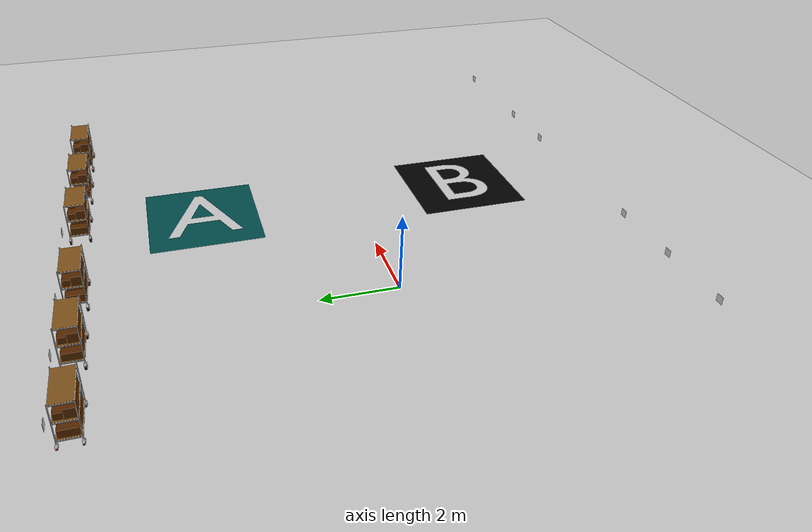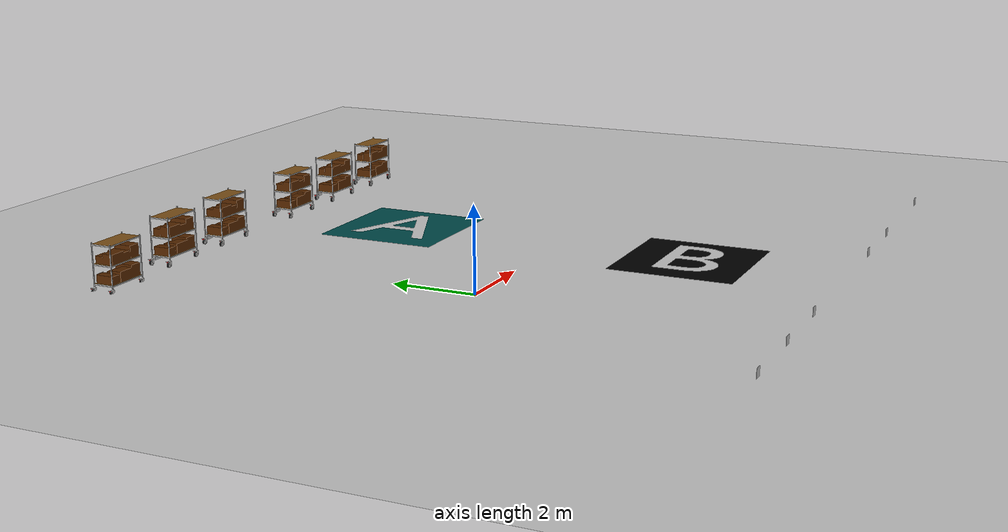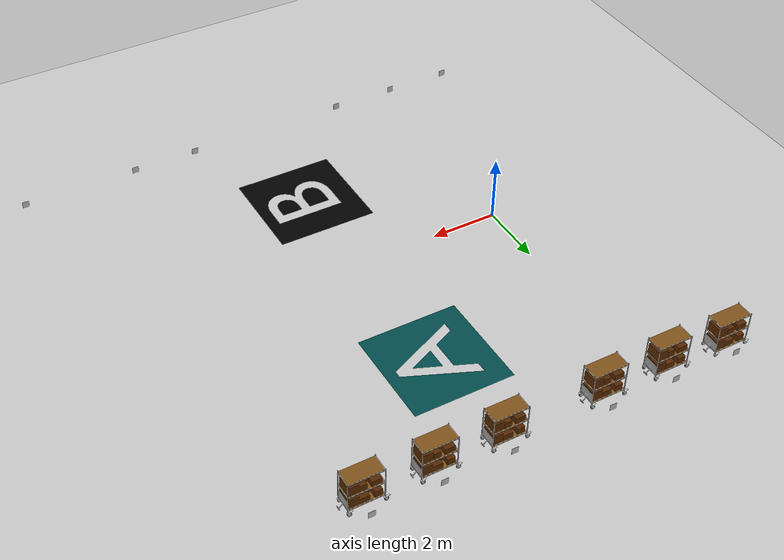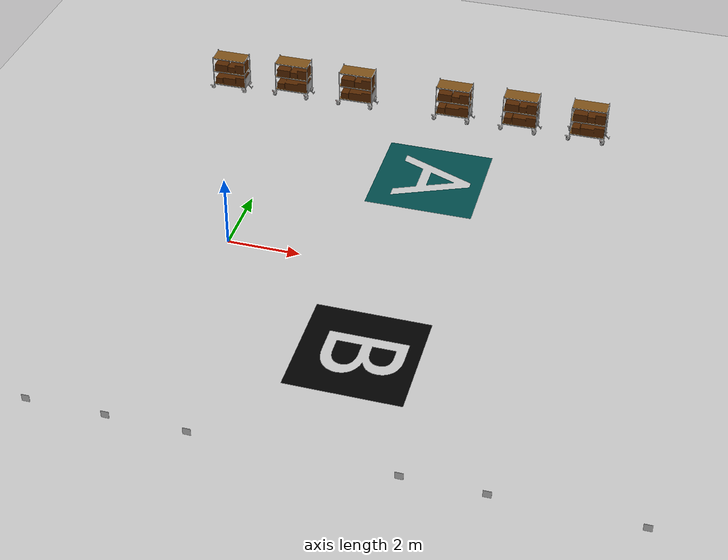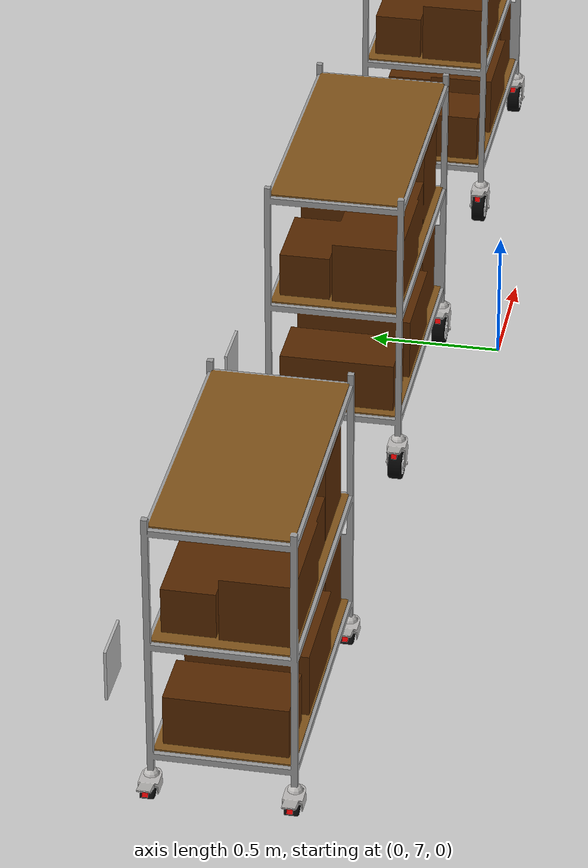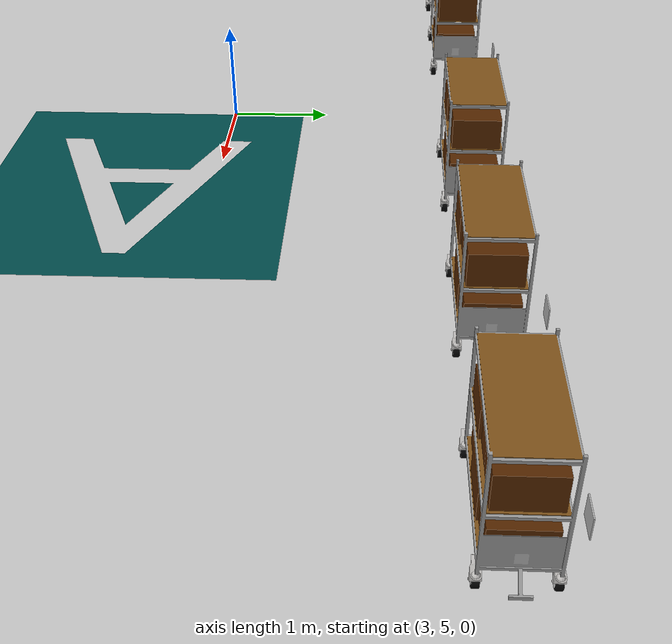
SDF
<sdf version="1.9">
 <world name="empty">
  <physics default="0" name="default_physics" type="ode">
   <max_step_size>0.01</max_step_size>
   <real_time_factor>1</real_time_factor>
   <real_time_update_rate>100</real_time_update_rate>
  </physics>
  <plugin name="gz::sim::systems::Physics" filename="gz-sim-physics-system"/>
  <plugin name="gz::sim::systems::UserCommands" filename="gz-sim-user-commands-system"/>
  <plugin name="gz::sim::systems::SceneBroadcaster" filename="gz-sim-scene-broadcaster-system"/>
  <plugin name="gz::sim::systems::Contact" filename="gz-sim-contact-system"/>
  <gravity>0 0 -9.8000000000000007</gravity>
  <magnetic_field>5.5644999999999998e-06 2.2875799999999999e-05 -4.2388400000000002e-05</magnetic_field>
  <atmosphere type="adiabatic"/>
  <scene>
   <ambient>0.400000006 0.400000006 0.400000006 1</ambient>
   <background>0.699999988 0.699999988 0.699999988 1</background>
   <shadows>true</shadows>
  </scene>
  <model name="ground_plane">
   <static>true</static>
   <link name="link">
    <collision name="collision">
     <geometry><plane><normal>0 0 1</normal><size>100 100</size></plane></geometry>
    </collision>
    <visual name="visual">
     <geometry><plane><normal>0 0 1</normal><size>100 100</size></plane></geometry>
     <material>
      <ambient>0.800000012 0.800000012 0.800000012 1</ambient>
      <diffuse>0.800000012 0.800000012 0.800000012 1</diffuse>
      <specular>0.800000012 0.800000012 0.800000012 1</specular>
     </material>
    </visual>
    <inertial>
     <mass>1</mass>
     <inertia><ixx>1</ixx><ixy>0</ixy><ixz>0</ixz><iyy>1</iyy><iyz>0</iyz><izz>1</izz></inertia>
    </inertial>
   </link>
  </model>
  <include>
   <uri>model://Apriltag36_11_00002</uri>
   <name>tag36_11_00001</name>
   <pose>-2.4924781322479248 7.9712347984313965 0.11262844502925873 0 -1.5708 1.5708</pose>
   <static>true</static>
  </include>
  <include>
   <uri>model://cart_model_2</uri>
   <name>cart_model2_0</name>
   <pose>-1.9974497197 7.47123479843 0.010166457292935922 0 0 0</pose>
   <static>true</static>
  </include>
  <include>
   <uri>model://Apriltag36_11_00003</uri>
   <name>tag36_11_00002</name>
   <pose>-0.49521669745445251 7.9712347984313965 0.11262844502925873 0 -1.5708 1.5708</pose>
   <static>true</static>
  </include>
  <include>
   <uri>model://cart_model_2</uri>
   <name>cart_model2_1</name>
   <pose>-0.0001882849 7.47123479843 0.15 0 0 0</pose>
   <static>true</static>
  </include>
  <include>
   <uri>model://Apriltag36_11_00004</uri>
   <name>tag36_11_00003</name>
   <pose>1.5189411105305899 7.9712347984313965 0.11262844502925873 0 -1.5708 1.5708</pose>
   <static>true</static>
  </include>
  <include>
   <uri>model://cart_model_2</uri>
   <name>cart_model2_2</name>
   <pose>2.01396952308 7.47123479843 0.15 0 0 0</pose>
   <static>true</static>
  </include>
  <include>
   <uri>model://Apriltag36_11_00005</uri>
   <name>tag36_11_00004</name>
   <pose>4.4940232445384698 7.9712347984313965 0.11262844502925873 0 -1.5708 1.5708</pose>
   <static>true</static>
  </include>
  <include>
   <uri>model://cart_model_2</uri>
   <name>cart_model2_3</name>
   <pose>4.98905165709 7.47123479843 0.15 0 0 0</pose>
   <static>true</static>
  </include>
  <include>
   <uri>model://Apriltag36_11_00006</uri>
   <name>tag36_11_00005</name>
   <pose>6.5056252111412327 7.9712347984313965 0.11262844502925873 0 -1.5708 1.5708</pose>
   <static>true</static>
  </include>
  <include>
   <uri>model://cart_model_2</uri>
   <name>cart_model2_4</name>
   <pose>7.00065362369 7.47123479843 0.15 0 0 0</pose>
   <static>true</static>
  </include>
  <include>
   <uri>model://Apriltag36_11_00007</uri>
   <name>tag36_11_00006</name>
   <pose>8.5118265151977539 7.9712347984313965 0.11262844502925873 0 -1.5708 1.5708</pose>
   <static>true</static>
  </include>
  <include>
   <uri>model://cart_model_2</uri>
   <name>cart_model2_5</name>
   <pose>9.00685492775 7.47123479843 0.15 0 0 0</pose>
   <static>true</static>
  </include>
  <include>
   <uri>model://Apriltag36_11_00003</uri>
   <name>tag36_11_00001_0</name>
   <pose>8.4743044491622062 -7.0236401557922363 0.11262844502925873 1.5708 -1.5708 -3.1416</pose>
   <static>true</static>
  </include>
  <include>
   <uri>model://Apriltag36_11_00004</uri>
   <name>tag36_11_00002_0</name>
   <pose>6.4928137260731162 -7.0236401557922363 0.11262844502925873 1.5708 -1.5708 -3.1416</pose>
   <static>true</static>
  </include>
  <include>
   <uri>model://Apriltag36_11_00005</uri>
   <name>tag36_11_00003_0</name>
   <pose>1.4930427191125051 -7.0236401557922363 0.11262844502925873 1.5708 -1.5708 -3.1416</pose>
   <static>true</static>
  </include>
  <include>
   <uri>model://Apriltag36_11_00006</uri>
   <name>tag36_11_00004_0</name>
   <pose>-0.51939174422231449 -7.0236401557922363 0.11262844502925873 1.5708 -1.5708 -3.1416</pose>
   <static>true</static>
  </include>
  <include>
   <uri>model://Apriltag36_11_00007</uri>
   <name>tag36_11_00005_0</name>
   <pose>-2.5207300186157227 -7.0236401557922363 0.11262844502925873 1.5708 -1.5708 -3.1416</pose>
   <static>true</static>
  </include>
  <include>
   <uri>model://Apriltag36_11_00002</uri>
   <name>tag36_11_00006_0</name>
   <pose>11.96028590238253 -7.02364015579223636 0.11262844502925873 1.5708 -1.5708 -3.1416</pose>
   <static>true</static>
  </include>
  <include>
   <uri>model://A_letter</uri>
   <name>A_letter</name>
   <pose>4.225921630859375 -0.89287352561950684 0.0010000000474974513 0 0 -1.5708</pose>
   <static>true</static>
  </include>
  <include>
   <uri>model://B_letter</uri>
   <name>B_letter</name>
   <pose>4.225921630859375 -3.3017544746398926 0.0010000000474974513 0 0 -1.5708</pose>
   <static>true</static>
  </include>
  <light name="sun" type="directional">
   <pose>0 0 10 0 0 0</pose>
   <intensity>1</intensity>
   <direction>-0.5 0.10000000000000001 -0.90000000000000002</direction>
   <diffuse>0.800000012 0.800000012 0.800000012 1</diffuse>
   <specular>0.200000003 0.200000003 0.200000003 1</specular>
   <attenuation>
    <range>1000</range>
    <linear>0.01</linear>
    <constant>0.90000000000000002</constant>
    <quadratic>0.001</quadratic>
   </attenuation>
   <spot><inner_angle>0</inner_angle><outer_angle>0</outer_angle><falloff>0</falloff></spot>
  </light>
 </world>
</sdf>

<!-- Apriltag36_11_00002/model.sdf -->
<sdf version='1.6'>
  <model name='Apriltag36_11_00002'>
    <link name='main'>
    <pose frame=''>0 0 0 0 0 0</pose>
      <visual name='main_Visual'>
        <geometry>
          <box>
          <size>0.2 0.2 0.01</size>
          </box>
        </geometry>
           <material>
          <script>
            <uri>model://Apriltag36_11_00002/materials/scripts</uri>
            <uri>model://Apriltag36_11_00002/materials/textures</uri>
            <name>Apriltag36_11_00002</name>
          </script>
        </material>
      </visual>
     </link>
    <static>1</static>
  </model>
</sdf>

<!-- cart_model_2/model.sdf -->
<sdf version="1.7">
    <model name="cart_model2">
        <pose>0 0 0 0 0 0</pose>
        <!-- BASE_LINK FRAME -->
        <link name="base_link">
            <pose>0 0 0 0 0 -1.57079632679</pose>
            <inertial>
                <pose>0 -0.5 0.5 0 0 0</pose>
                <mass>30</mass>
                <inertia>
                    <ixx>0.1</ixx>
                    <ixy>0</ixy>
                    <ixz>0</ixz>
                    <iyy>0.1</iyy>
                    <iyz>0</iyz>
                    <izz>0.1</izz>
                </inertia>
            </inertial>
            <collision name="base_link_collision">
                <pose>0 0 0 0 0 0</pose>
                <geometry>
                    <mesh>
                        <scale>1 1 1</scale>
                        <uri>meshes/cart_base_collision.stl</uri>
                    </mesh>
                </geometry>
                <max_contacts>5</max_contacts>
                <surface>
                    <contact>
                        <ode>
                            <soft_cfm>1.0</soft_cfm>
                            <soft_erp>0.4</soft_erp>
                            <kp>1000000.0</kp>
                            <kd>1</kd>
                            <min_depth>0.01</min_depth>
                        </ode>
                    </contact>
                    <friction>
                        <ode>
                            <mu>1.16</mu>
                            <mu2>1.16</mu2>
                        </ode>
                    </friction>
                </surface>
            </collision>
            <visual name="base_link_visual">
                <pose>0 0 0 0 0 0</pose>
                <geometry>
                    <mesh>
                        <scale>1 1 1</scale>
                        <uri>meshes/cart_base.dae</uri>
                        <submesh>
                            <name>base_metal</name>
                            <center>false</center>
                        </submesh>
                    </mesh>
                </geometry>
            </visual>
            <visual name="base_shelf_visual">
                <pose>0 0 0 0 0 0</pose>
                <geometry>
                    <mesh>
                        <scale>1 1 1</scale>
                        <uri>meshes/cart_base.dae</uri>
                        <submesh>
                            <name>base_shelf</name>
                            <center>false</center>
                        </submesh>
                    </mesh>
                </geometry>
            </visual>
            <visual name="back_left_sup_visual">
                <pose>-0.245 -1.005 0.05 0 0 0</pose>
                <geometry>
                    <mesh>
                        <scale>1 1 1</scale>
                        <uri>meshes/sup_wheels.dae</uri>
                    </mesh>
                </geometry>
            </visual>
            <visual name="back_right_sup_visual">
                <pose>0.245 -1.005 0.05 0 0 0</pose>
                <geometry>
                    <mesh>
                        <scale>1 1 1</scale>
                        <uri>meshes/sup_wheels.dae</uri>
                    </mesh>
                </geometry>
            </visual>
            <visual name="tag_visual">
                <pose>0 0 0 0 0 0</pose>
                <geometry>
                    <mesh>
                        <scale>1 1 1</scale>
                        <uri>meshes/cart_base.dae</uri>
                        <submesh>
                            <name>tag</name>
                            <center>false</center>
                        </submesh>
                    </mesh>
                </geometry>
                <material>
                    <diffuse>1.0 1.0 1.0</diffuse>
                    <specular>1.0 1.0 1.0</specular>
                    <pbr>
                        <metal>
                            <albedo_map>meshes/cart_tag.png</albedo_map>
                        </metal>
                    </pbr>
                </material>
            </visual>
        </link>
        <!-- Wheels -->
        <!-- Back Left -->
        <link name="back_left">
            <pose>-1.04 -0.245 -0.05 0 0 1.570796327</pose>
            <inertial>
                <pose>0 0 0 0 1.570796327 0</pose>
                <mass>0.01</mass>
                <inertia>
                    <ixx>0.0000175</ixx>
                    <ixy>0</ixy>
                    <ixz>0</ixz>
                    <iyy>0.0000175</iyy>
                    <iyz>0</iyz>
                    <izz>0.00003125</izz>
                </inertia>
            </inertial>
            <collision name="back_left_collision">
                <pose>0 0 0 0 1.570796327 0</pose>
                <geometry>
                    <cylinder>
                        <length>0.03</length>
                        <radius>0.06</radius>
                    </cylinder>
                </geometry>
                <max_contacts>5</max_contacts>
                <surface>
                    <contact>
                        <ode>
                            <soft_cfm>1.0</soft_cfm>
                            <soft_erp>0.4</soft_erp>
                            <kp>1000000.0</kp>
                            <kd>1</kd>
                            <min_depth>0.01</min_depth>
                        </ode>
                    </contact>
                    <friction>
                        <ode>
                            <mu>1.16</mu>
                            <mu2>1.16</mu2>
                        </ode>
                    </friction>
                </surface>
            </collision>
            <visual name="back_left_visual">
                <pose>0 0 0 0 0 0</pose>
                <geometry>
                    <mesh>
                        <scale>1 1 1</scale>
                        <uri>meshes/wheel.dae</uri>
                    </mesh>
                </geometry>
            </visual>
        </link>
        <joint name="back_left_joint" type="revolute">
            <child>back_left</child>
            <parent>base_link</parent>
            <axis>
                <xyz>1 0 0</xyz>
                <dynamics>
                    <friction>0.5</friction>
                    <damping>0.0001</damping>
                </dynamics>
            </axis>
        </joint>
        <!-- Back Right -->
        <link name="back_right">
            <pose>-1.04 0.245 -0.05 0 0 1.570796327</pose>
            <inertial>
                <pose>0 0 0 0 1.570796327 0</pose>
                <mass>0.01</mass>
                <inertia>
                    <ixx>0.0000175</ixx>
                    <ixy>0</ixy>
                    <ixz>0</ixz>
                    <iyy>0.0000175</iyy>
                    <iyz>0</iyz>
                    <izz>0.00003125</izz>
                </inertia>
            </inertial>
            <collision name="back_right_collision">
                <pose>0 0 0 0 1.570796327 0</pose>
                <geometry>
                    <cylinder>
                        <length>0.03</length>
                        <radius>0.06</radius>
                    </cylinder>
                </geometry>
                <max_contacts>5</max_contacts>
                <surface>
                    <contact>
                        <ode>
                            <soft_cfm>1.0</soft_cfm>
                            <soft_erp>0.4</soft_erp>
                            <kp>1000000.0</kp>
                            <kd>1</kd>
                            <min_depth>0.01</min_depth>
                        </ode>
                    </contact>
                    <friction>
                        <ode>
                            <mu>1.16</mu>
                            <mu2>1.16</mu2>
                        </ode>
                    </friction>
                </surface>
            </collision>
            <visual name="back_right_visual">
                <pose>0 0 0 0 0 0</pose>
                <geometry>
                    <mesh>
                        <scale>1 1 1</scale>
                        <uri>meshes/wheel.dae</uri>
                    </mesh>
                </geometry>
            </visual>
        </link>
        <joint name="back_right_joint" type="revolute">
            <child>back_right</child>
            <parent>base_link</parent>
            <axis>
                <xyz>1 0 0</xyz>
                <dynamics>
                    <friction>0.5</friction>
                    <damping>0.0001</damping>
                </dynamics>
            </axis>
        </joint>
        <!-- Front Left -->
        <link name="wheel_sup_front_left">
            <pose>0 -0.245 0.05 0 0 1.570796327</pose>
            <inertial>
                <pose>0 0 0 0 0 0</pose>
                <mass>0.01</mass>
                <inertia>
                    <ixx>0.0000175</ixx>
                    <ixy>0</ixy>
                    <ixz>0</ixz>
                    <iyy>0.0000175</iyy>
                    <iyz>0</iyz>
                    <izz>0.0000175</izz>
                </inertia>
            </inertial>
            <visual name="wheel_sup_front_left_visual">
                <pose>0 0 0 0 0 3.14159265359</pose>
                <geometry>
                    <mesh>
                        <scale>1 1 1</scale>
                        <uri>meshes/sup_wheels.dae</uri>
                    </mesh>
                </geometry>
            </visual>
        </link>
        <joint name="wheel_sup_front_left_joint" type="revolute">
            <child>wheel_sup_front_left</child>
            <parent>base_link</parent>
            <axis>
                <xyz>0 0 1</xyz>
                <dynamics>
                    <damping>0.001</damping>
                </dynamics>
            </axis>
        </joint>
        <link name="front_left">
            <pose>-0.04 -0.245 -0.05 0 0 1.570796327</pose>
            <inertial>
                <pose>0 0 0 0 1.570796327 0</pose>
                <mass>0.01</mass>
                <inertia>
                    <ixx>0.0000175</ixx>
                    <ixy>0</ixy>
                    <ixz>0</ixz>
                    <iyy>0.0000175</iyy>
                    <iyz>0</iyz>
                    <izz>0.00003125</izz>
                </inertia>
            </inertial>
            <collision name="front_left_collision">
                <pose>0 0 0 0 1.570796327 0</pose>
                <geometry>
                    <cylinder>
                        <length>0.03</length>
                        <radius>0.06</radius>
                    </cylinder>
                </geometry>
                <max_contacts>5</max_contacts>
                <surface>
                    <contact>
                        <ode>
                            <soft_cfm>1.0</soft_cfm>
                            <soft_erp>0.4</soft_erp>
                            <kp>1000000.0</kp>
                            <kd>1</kd>
                            <min_depth>0.01</min_depth>
                        </ode>
                    </contact>
                    <friction>
                        <ode>
                            <mu>1.16</mu>
                            <mu2>1.16</mu2>
                        </ode>
                    </friction>
                </surface>
            </collision>
            <visual name="front_left_visual">
                <pose>0 0 0 0 0 0</pose>
                <geometry>
                    <mesh>
                        <scale>1 1 1</scale>
                        <uri>meshes/wheel.dae</uri>
                    </mesh>
                </geometry>
            </visual>
        </link>
        <joint name="front_left_joint" type="revolute">
            <child>front_left</child>
            <parent>wheel_sup_front_left</parent>
            <axis>
                <xyz>1 0 0</xyz>
                <dynamics>
                    <friction>0.5</friction>
                    <damping>0.0001</damping>
                </dynamics>
            </axis>
        </joint>
        <!-- Front Right -->
        <link name="wheel_sup_front_right">
            <pose>0 0.245 0.05 0 0 1.570796327</pose>
            <inertial>
                <pose>0 0 0 0 0 0</pose>
                <mass>0.01</mass>
                <inertia>
                    <ixx>0.0000175</ixx>
                    <ixy>0</ixy>
                    <ixz>0</ixz>
                    <iyy>0.0000175</iyy>
                    <iyz>0</iyz>
                    <izz>0.0000175</izz>
                </inertia>
            </inertial>
            <visual name="wheel_sup_front_right_visual">
                <pose>0 0 0 0 0 3.14159265359</pose>
                <geometry>
                    <mesh>
                        <scale>1 1 1</scale>
                        <uri>meshes/sup_wheels.dae</uri>
                    </mesh>
                </geometry>
            </visual>
        </link>
        <joint name="wheel_sup_front_right_joint" type="revolute">
            <child>wheel_sup_front_right</child>
            <parent>base_link</parent>
            <axis>
                <xyz>0 0 1</xyz>
                <dynamics>
                    <damping>0.001</damping>
                </dynamics>
            </axis>
        </joint>
        <link name="front_right">
            <pose>-0.04 0.245 -0.05 0 0 1.570796327</pose>
            <inertial>
                <pose>0 0 0 0 1.570796327 0</pose>
                <mass>0.01</mass>
                <inertia>
                    <ixx>0.0000175</ixx>
                    <ixy>0</ixy>
                    <ixz>0</ixz>
                    <iyy>0.0000175</iyy>
                    <iyz>0</iyz>
                    <izz>0.00003125</izz>
                </inertia>
            </inertial>
            <collision name="front_right_collision">
                <pose>0 0 0 0 1.570796327 0</pose>
                <geometry>
                    <cylinder>
                        <length>0.03</length>
                        <radius>0.06</radius>
                    </cylinder>
                </geometry>
                <max_contacts>5</max_contacts>
                <surface>
                    <contact>
                        <ode>
                            <soft_cfm>1.0</soft_cfm>
                            <soft_erp>0.4</soft_erp>
                            <kp>1000000.0</kp>
                            <kd>1</kd>
                            <min_depth>0.01</min_depth>
                        </ode>
                    </contact>
                    <friction>
                        <ode>
                            <mu>1.16</mu>
                            <mu2>1.16</mu2>
                        </ode>
                    </friction>
                </surface>
            </collision>
            <visual name="front_right_visual">
                <pose>0 0 0 0 0 0</pose>
                <geometry>
                    <mesh>
                        <scale>1 1 1</scale>
                        <uri>meshes/wheel.dae</uri>
                    </mesh>
                </geometry>
            </visual>
        </link>
        <joint name="front_right_joint" type="revolute">
            <child>front_right</child>
            <parent>wheel_sup_front_right</parent>
            <axis>
                <xyz>1 0 0</xyz>
                <dynamics>
                    <friction>0.5</friction>
                    <damping>0.0001</damping>
                </dynamics>
            </axis>
        </joint>
    </model>
</sdf>

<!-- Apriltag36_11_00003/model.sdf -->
<sdf version='1.6'>
  <model name='Apriltag36_11_00003'>
    <link name='main'>
    <pose frame=''>0 0 0 0 0 0</pose>
      <visual name='main_Visual'>
        <geometry>
          <box>
          <size>0.2 0.2 0.01</size>
          </box>
        </geometry>
           <material>
          <script>
            <uri>model://Apriltag36_11_00003/materials/scripts</uri>
            <uri>model://Apriltag36_11_00003/materials/textures</uri>
            <name>Apriltag36_11_00003</name>
          </script>
        </material>
      </visual>
     </link>
    <static>1</static>
  </model>
</sdf>

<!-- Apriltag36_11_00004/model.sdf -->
<sdf version='1.6'>
  <model name='Apriltag36_11_00004'>
    <link name='main'>
    <pose frame=''>0 0 0 0 0 0</pose>
      <visual name='main_Visual'>
        <geometry>
          <box>
          <size>0.2 0.2 0.01</size>
          </box>
        </geometry>
           <material>
          <script>
            <uri>model://Apriltag36_11_00004/materials/scripts</uri>
            <uri>model://Apriltag36_11_00004/materials/textures</uri>
            <name>Apriltag36_11_00004</name>
          </script>
        </material>
      </visual>
     </link>
    <static>1</static>
  </model>
</sdf>

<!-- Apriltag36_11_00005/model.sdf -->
<sdf version='1.6'>
  <model name='Apriltag36_11_00005'>
    <link name='main'>
    <pose frame=''>0 0 0 0 0 0</pose>
      <visual name='main_Visual'>
        <geometry>
          <box>
          <size>0.2 0.2 0.01</size>
          </box>
        </geometry>
           <material>
          <script>
            <uri>model://Apriltag36_11_00005/materials/scripts</uri>
            <uri>model://Apriltag36_11_00005/materials/textures</uri>
            <name>Apriltag36_11_00005</name>
          </script>
        </material>
      </visual>
     </link>
    <static>1</static>
  </model>
</sdf>

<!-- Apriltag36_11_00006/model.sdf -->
<sdf version='1.6'>
  <model name='Apriltag36_11_00006'>
    <link name='main'>
    <pose frame=''>0 0 0 0 0 0</pose>
      <visual name='main_Visual'>
        <geometry>
          <box>
          <size>0.2 0.2 0.01</size>
          </box>
        </geometry>
           <material>
          <script>
            <uri>model://Apriltag36_11_00006/materials/scripts</uri>
            <uri>model://Apriltag36_11_00006/materials/textures</uri>
            <name>Apriltag36_11_00006</name>
          </script>
        </material>
      </visual>
     </link>
    <static>1</static>
  </model>
</sdf>

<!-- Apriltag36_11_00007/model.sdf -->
<sdf version='1.6'>
  <model name='Apriltag36_11_00007'>
    <link name='main'>
    <pose frame=''>0 0 0 0 0 0</pose>
      <visual name='main_Visual'>
        <geometry>
          <box>
          <size>0.2 0.2 0.01</size>
          </box>
        </geometry>
           <material>
          <script>
            <uri>model://Apriltag36_11_00007/materials/scripts</uri>
            <uri>model://Apriltag36_11_00007/materials/textures</uri>
            <name>Apriltag36_11_00007</name>
          </script>
        </material>
      </visual>
     </link>
    <static>1</static>
  </model>
</sdf>

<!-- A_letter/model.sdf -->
<sdf version="1.6">
  <model name="A_letter">
    <static>true</static>
    <link name="plate">
      <inertial>
        <mass>1</mass>
        <inertia>
          <ixx>1</ixx>
          <ixy>0</ixy>
          <ixz>0</ixz>
          <iyy>1</iyy>
          <iyz>0</iyz>
          <izz>1</izz>
        </inertia>
      </inertial>

      <collision name="collision">
        <geometry>
          <box>
            <size>13 3 0.01</size>
          </box>
        </geometry>
      </collision>

      <visual name="visual">
        <geometry>
          <mesh>
            <uri>meshes/A_letter.dae</uri>
          </mesh>
        </geometry>
      </visual>
    </link>
  </model>
</sdf>

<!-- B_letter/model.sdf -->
<sdf version="1.6">
  <model name="B_letter">
    <static>true</static>
    <link name="plate">
      <inertial>
        <mass>1</mass>
        <inertia>
          <ixx>1</ixx>
          <ixy>0</ixy>
          <ixz>0</ixz>
          <iyy>1</iyy>
          <iyz>0</iyz>
          <izz>1</izz>
        </inertia>
      </inertial>

      <collision name="collision">
        <geometry>
          <box>
            <size>13 3 0.01</size>
          </box>
        </geometry>
      </collision>

      <visual name="visual">
        <geometry>
          <mesh>
            <uri>meshes/B_letter.dae</uri>
          </mesh>
        </geometry>
      </visual>
    </link>
  </model>
</sdf>
